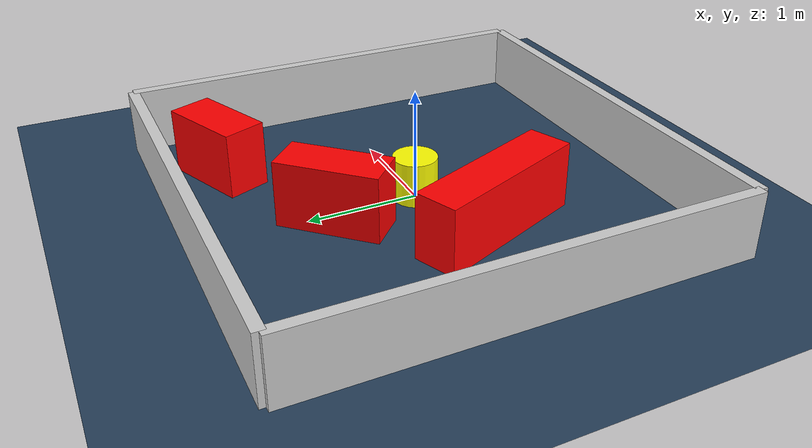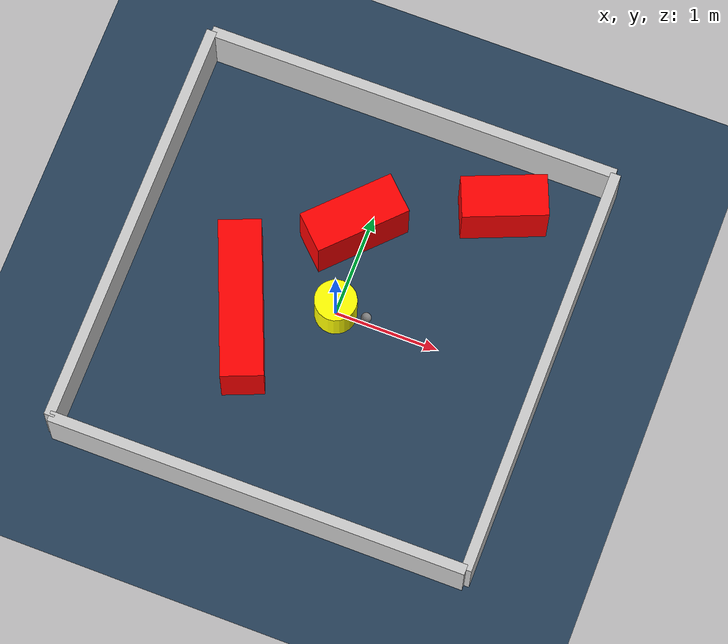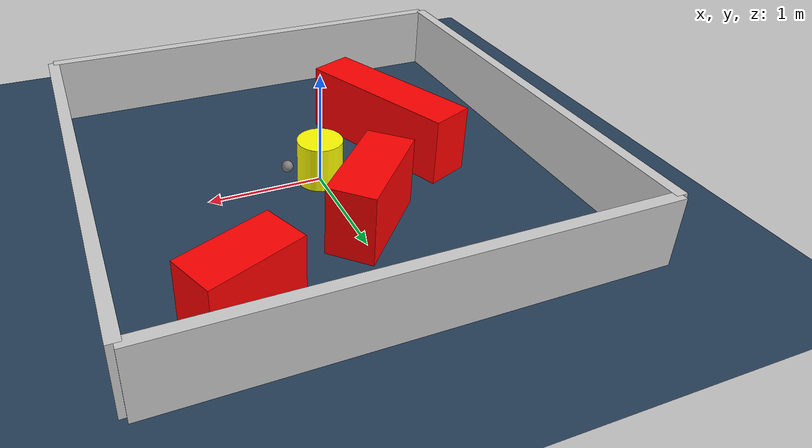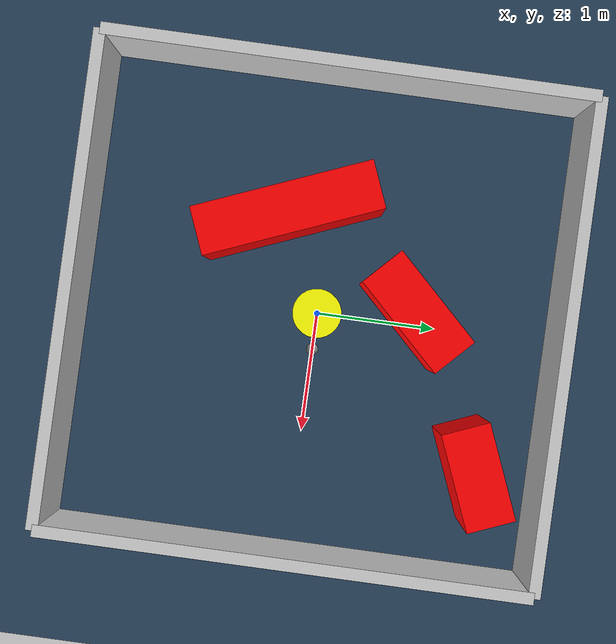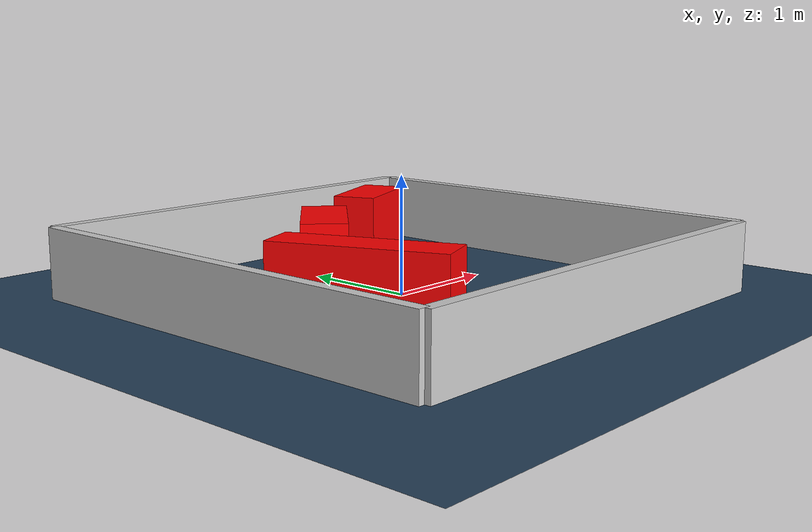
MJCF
<?xml version="1.0" ?>
<mujoco model="generated_environment">
  <option timestep="0.01" integrator="RK4" cone="elliptic"/>
  <default>
    <geom density="1"/>
  </default>
  <asset>
    <texture builtin="gradient" height="3072" rgb1="0.3 0.5 0.7" rgb2="0 0 0" type="skybox" width="512"/>
    <texture builtin="checker" height="300" mark="edge" markrgb="0.8 0.8 0.8" name="groundplane" rgb1="0.2 0.3 0.4" rgb2="0.1 0.2 0.3" type="2d" width="300"/>
    <material name="groundplane" reflectance="0.2" texrepeat="5 5" texture="groundplane" texuniform="true"/>
    <material name="robot" rgba="0.0 1.0 0.0 1"/>
  </asset>
  <worldbody>
    <light dir="0 0 -1" directional="true" pos="0 0 1.5"/>
    <geom condim="4" friction="1.0 0.005 0.001" material="groundplane" name="floor" size="0 0 0.05" type="plane"/>
    <body name="walls">
      <geom name="wall_1" condim="4" pos="-2.0 0.0 0.3" rgba="0.800000011920929 0.800000011920929 0.800000011920929 1.0" size="0.05 2.0 0.3" type="box"/>
      <geom name="wall_2" condim="4" pos="2.0 0.0 0.3" rgba="0.800000011920929 0.800000011920929 0.800000011920929 1.0" size="0.05 2.0 0.3" type="box"/>
      <geom name="wall_3" condim="4" pos="0.0 -2.0 0.3" rgba="0.800000011920929 0.800000011920929 0.800000011920929 1.0" size="2.0 0.05 0.3" type="box"/>
      <geom name="wall_4" condim="4" pos="0.0 2.0 0.3" rgba="0.800000011920929 0.800000011920929 0.800000011920929 1.0" size="2.0 0.05 0.3" type="box"/>
    </body>
    <body name="robot">
      <joint name="joint_x" type="slide" pos="0 0 0" axis="1 0 0"/>
      <joint name="joint_y" type="slide" pos="0 0 0" axis="0 1 0"/>
      <geom name="robot" type="sphere" pos="0.3 0.0 0.2" size="0.05" mass="5." friction="1.0 0.005 0.0001" condim="4" rgba="0.5 0.5 0.5 1.0"/>
      <site name="sensor_ball"/>
    </body>
    <body name="obstacle_movable_1">
      <geom name="obstacle_movable_1" condim="4" pos="0.0 0.0 0.2" euler="0 0 0.0" friction="1.0 0.005 0.001" rgba="1.0 1.0 0.0 1.0" size="0.2 0.2 0.0" type="cylinder" mass="0.1"/>
      <joint type="free"/>
    </body>
    <body name="obstacle_2_static">
      <geom name="obstacle_2_static" condim="4" pos="1.1154941226458075 1.4376207548325255 0.3" euler="0 0 22.25988182796463" friction="1.0 0.005 0.001" rgba="1 0 0 1" size="0.40172132262223337 0.2 0.3" type="box"/>
    </body>
    <body name="obstacle_3_static">
      <geom name="obstacle_3_static" condim="4" pos="-0.11801462325990242 0.7931123783286711 0.3" euler="0 0 46.01323485102179" friction="1.0 0.005 0.001" rgba="1 0 0 1" size="0.46218425903809685 0.2 0.3" type="box"/>
    </body>
    <body name="obstacle_4_static">
      <geom name="obstacle_4_static" condim="4" pos="-0.7964072743043571 -0.34095016808509304 0.3" euler="0 0 292.06698132847265" friction="1.0 0.005 0.001" rgba="1 0 0 1" size="0.7500489071017418 0.2 0.3" type="box"/>
    </body>
  </worldbody>
  <actuator>
    <motor name="actuator_x" joint="joint_x" gear="1" ctrlrange="-1 1"/>
    <motor name="actuator_y" joint="joint_y" gear="1" ctrlrange="-1 1"/>
  </actuator>
</mujoco>
